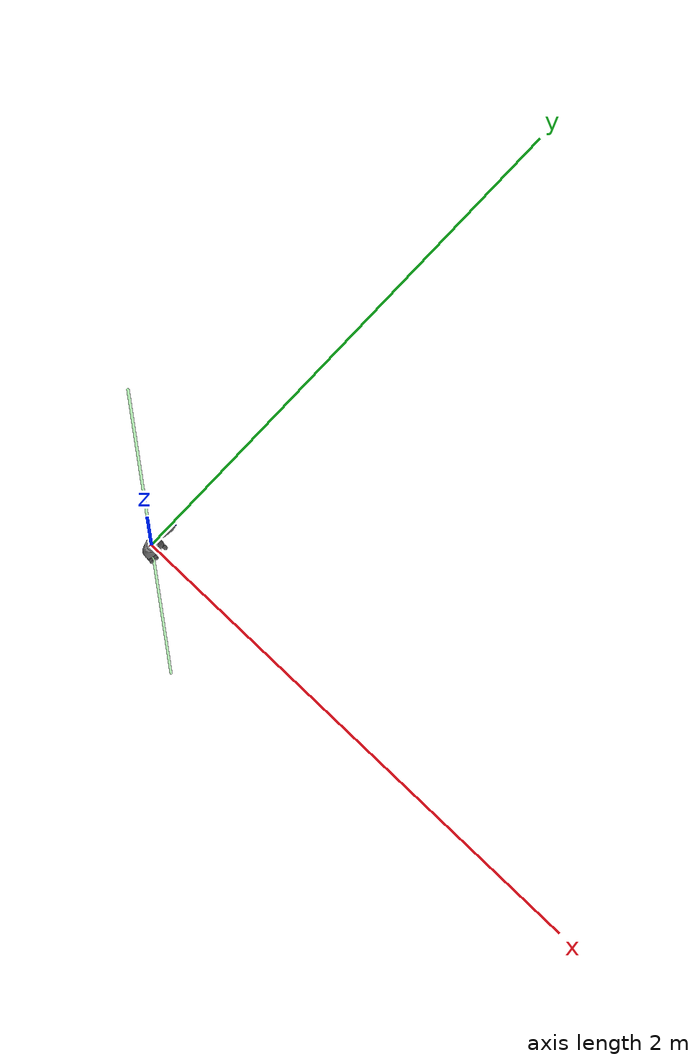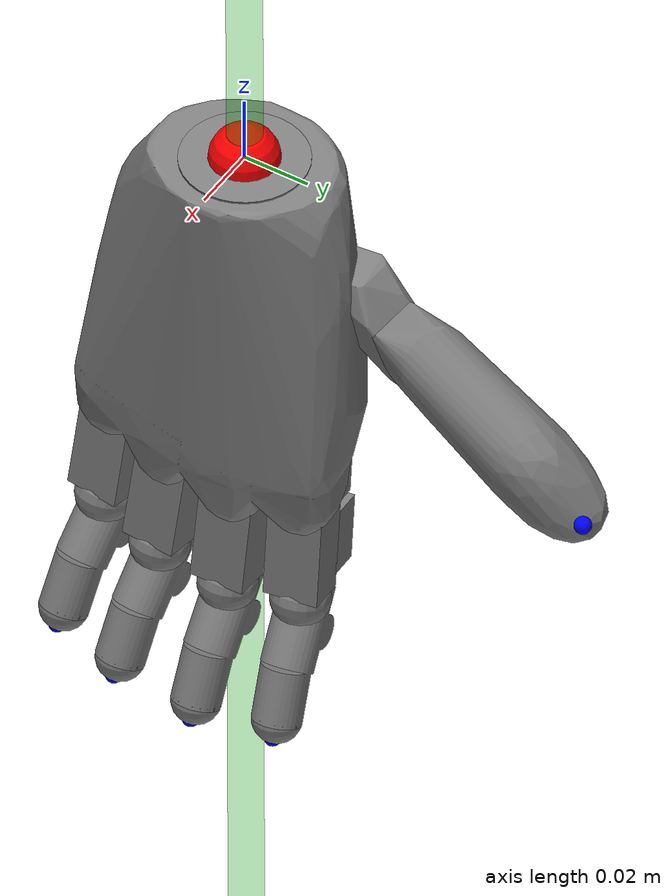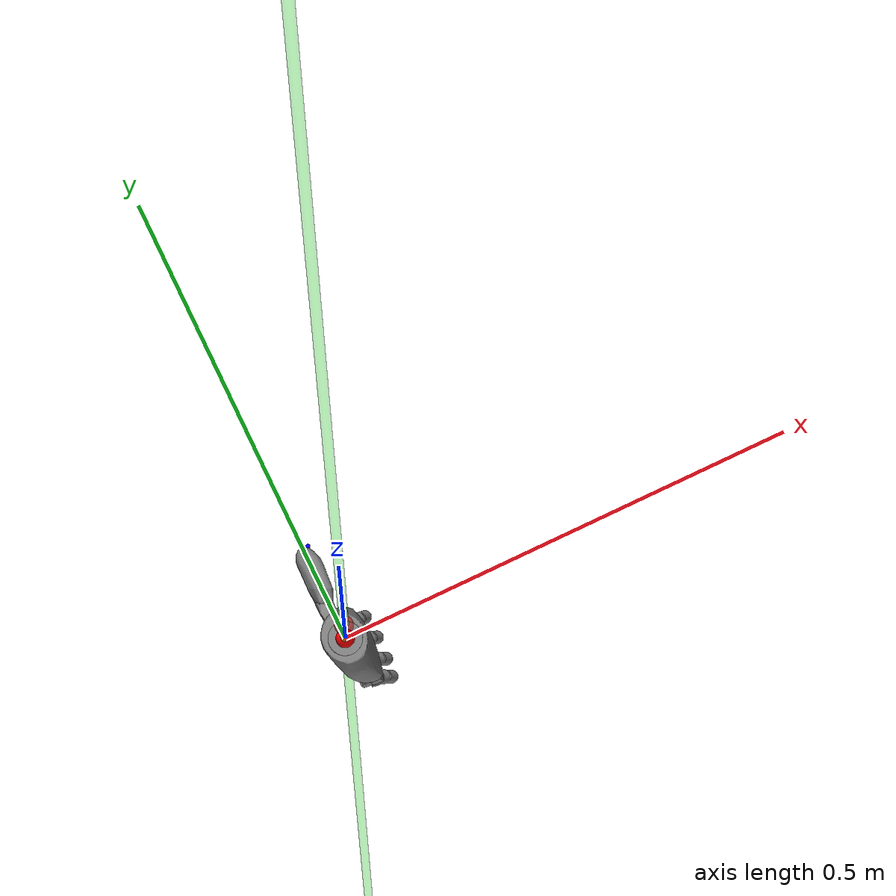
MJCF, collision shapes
<?xml version="1.0" ?>
<mujoco model="hand">
  <compiler angle="radian" autolimits="true"/>
  <visual>
    <global ellipsoidinertia="true"/>
  </visual>
  <default>
    <default class="ability_right_hand_finger">
      <joint damping="0.001" frictionloss="0.001"/>
    </default>
  </default>
  <asset>
    <mesh name="visual_wristmesh" file="meshes/ability_hand/visual/wristmesh.obj"/>
    <mesh name="collision_wristmesh_C" file="meshes/ability_hand/collision/wristmesh_C.obj"/>
    <mesh name="visual_FB_palm_ref_MIR" file="meshes/ability_hand/visual/FB_palm_ref_MIR.obj"/>
    <mesh name="collision_FB_palm_ref_MIR" file="meshes/ability_hand/collision/FB_palm_ref_MIR.obj"/>
    <mesh name="visual_thumb-F1-MIR" file="meshes/ability_hand/visual/thumb-F1-MIR.obj"/>
    <mesh name="collision_thumb-F1-MIR_C" file="meshes/ability_hand/collision/thumb-F1-MIR_C.obj"/>
    <mesh name="visual_thumb-F2" file="meshes/ability_hand/visual/thumb-F2.obj"/>
    <mesh name="collision_thumb-F2_C" file="meshes/ability_hand/collision/thumb-F2_C.obj"/>
    <mesh name="visual_idx-F1" file="meshes/ability_hand/visual/idx-F1.obj"/>
    <mesh name="visual_idx-F2" file="meshes/ability_hand/visual/idx-F2.obj"/>
    <mesh name="collision_idx-F2_C" file="meshes/ability_hand/collision/idx-F2_C.obj"/>
  </asset>
  <actuator>
    <motor name="thumb_q1" joint="thumb_q1" ctrlrange="-50 50" ctrllimited="true"/>
    <motor name="thumb_q2" joint="thumb_q2" ctrlrange="-50 50" ctrllimited="true"/>
    <motor name="index_q1" joint="index_q1" ctrlrange="-50 50" ctrllimited="true"/>
    <motor name="index_q2" joint="index_q2" ctrlrange="-50 50" ctrllimited="true"/>
    <motor name="middle_q1" joint="middle_q1" ctrlrange="-50 50" ctrllimited="true"/>
    <motor name="middle_q2" joint="middle_q2" ctrlrange="-50 50" ctrllimited="true"/>
    <motor name="ring_q1" joint="ring_q1" ctrlrange="-50 50" ctrllimited="true"/>
    <motor name="ring_q2" joint="ring_q2" ctrlrange="-50 50" ctrllimited="true"/>
    <motor name="pinky_q1" joint="pinky_q1" ctrlrange="-50 50" ctrllimited="true"/>
    <motor name="pinky_q2" joint="pinky_q2" ctrlrange="-50 50" ctrllimited="true"/>
  </actuator>
  <worldbody>
    <body name="right_hand" pos="0 0 0" quat="1 0 0 0">
      <site name="ft_frame" pos="0 0 0" size="0.01 0.01 0.01" rgba="1 0 0 1" type="sphere" group="1"/>
      <inertial pos="0 0 0.17" quat="0.707107 0.707107 0 0" mass="0.3" diaginertia="0.09 0.07 0.05"/>
      <body name="eef" pos="0 0 0.097" quat="1 0 0 0">
        <site name="grip_site" pos="0 0 0" size="0.01 0.01 0.01" rgba="1 0 0 0.5" type="sphere" group="1"/>
        <site name="ee_x" pos="0.1 0 0" size="0.005 .1" quat="0.707105  0 0.707108 0 " rgba="1 0 0 0" type="cylinder" group="1"/>
        <site name="ee_y" pos="0 0.1 0" size="0.005 .1" quat="0.707105 0.707108 0 0" rgba="0 1 0 0" type="cylinder" group="1"/>
        <site name="ee_z" pos="0 0 0.1" size="0.005 .1" quat="1 0 0 0" rgba="0 0 1 0" type="cylinder" group="1"/>
        <site name="grip_site_cylinder" pos="0 0 0" size="0.005 10" rgba="0 1 0 0.3" type="cylinder" group="1"/>
      </body>
      <!--Start of base-->
      <body name="hand_mount" quat="0 0 -1 0">
        <!--Start of hand base-->
        <body name="base" pos="0.0 0.0 0.0" quat="0.7071090180427968 0.0 0.0 -0.7071045443232222">
          <inertial pos="22.41911e-3 -0.15798201e-3 -0.01319866e-3" quat="1.0 0.0 0.0 0.0" mass="0.200" diaginertia="978.26e-6 1244.78e-6 456.22e-6"/>
          <geom pos="0.0 0.0 0.0" quat="1.0 0.0 0.0 0.0" name="base_visual" group="1" contype="0" conaffinity="0" mesh="visual_wristmesh" type="mesh"/>
          <geom pos="0.0 0.0 0.0" quat="1.0 0.0 0.0 0.0" name="base_collision" group="0" mesh="collision_wristmesh_C" type="mesh"/>
          <!--Start of hand base-->
          <body name="thumb_base" pos="-0.0240476665 0.00378124745 0.03232964923" quat="0.04422965633392243 0.0006102695033793134 -0.9990212031492024 -2.701918460132315e-05">
            <inertial pos="22.41911e-3 -0.15798201e-3 -0.01319866e-3" quat="1.0 0.0 0.0 0.0" mass="0.200" diaginertia="978.26e-6 1244.78e-6 456.22e-6"/>
            <geom pos="0.0 0.0 0.0" quat="1.0 0.0 0.0 0.0" name="thumb_base_visual" group="1" contype="0" conaffinity="0" mesh="visual_FB_palm_ref_MIR" type="mesh"/>
            <geom pos="0.0 0.0 0.0" quat="1.0 0.0 0.0 0.0" name="thumb_base_collision" group="0" mesh="collision_FB_palm_ref_MIR" type="mesh"/>
            <!--Start of thumb_L1-->
            <body name="thumb_L1" pos="0.0 0.0 0.0" quat="6.095958279994181e-17 0.9955455375767813 -0.09428193151902146 -5.773103282609979e-18">
              <joint name="thumb_q1" type="hinge" class="ability_right_hand_finger" axis="0 0 1" range="-2.0943951 0"/>
              <inertial pos="14.606e-3 -1.890854e-3 -3.1155356e-3" quat="1.0 0.0 0.0 0.0" mass="0.00268342" diaginertia="0.16931e-4 0.77769934e-4 0.7249122e-4"/>
              <geom pos="0.0278283501 1.7436510745838653e-19 0.0147507" quat="0.608761429008721 0.7933533402912348 2.128773524066493e-18 1.6334653763113006e-18" name="thumb_L1_visual" group="1" contype="0" conaffinity="0" mesh="visual_thumb-F1-MIR" type="mesh"/>
              <geom pos="0.0278283501 1.7436510745838653e-19 0.0147507" quat="0.608761429008721 0.7933533402912348 2.128773524066493e-18 1.6334653763113006e-18" name="thumb_L1_collision" group="0" mesh="collision_thumb-F1-MIR_C" type="mesh"/>
              <!--Start of thumb_L2-->
              <body name="thumb_L2" pos="0.0278283501 1.7436510745838653e-19 0.0147507" quat="0.608761429008721 0.7933533402912348 2.128773524066493e-18 1.6334653763113006e-18">
                <joint name="thumb_q2" type="hinge" class="ability_right_hand_finger" axis="0 0 1" range="0 2.0943951"/>
                <inertial pos="30.020522e-3 5.59476e-3 -4.1504356e-3" quat="1.0 0.0 0.0 0.0" mass="0.0055" diaginertia="4.4789082e-4 15.600996e-4 17.908554e-4"/>
                <geom pos="0.06518669 0.02334021 0.00393483" quat="3.2197760503667046e-07 -0.9852589757290691 -0.1710694325272601 5.5904617503586985e-08" name="thumb_L2_visual" group="1" contype="0" conaffinity="0" mesh="visual_thumb-F2" type="mesh"/>
                <geom pos="0.06518669 0.02334021 0.00393483" quat="3.2197760503667046e-07 -0.9852589757290691 -0.1710694325272601 5.5904617503586985e-08" name="thumb_L2_collision" group="0" mesh="collision_thumb-F2_C" type="mesh"/>
                <body name="thumb_tip">
                  <site name="thumb_tip" pos="0.065 0.016 0" rgba="0 0 1 1" size="0.0025" group="2"/>
                </body>
              </body>
              <!--End of thumb_L2-->
            </body>
            <!--End of thumb_L1-->
            <!--Start of index_L1-->
            <body name="index_L1" pos="0.00949 -0.01304 -0.06295" quat="0.7441290289055105 -0.12811340794472753 0.6535561089151588 -0.052185779141515676">
              <joint name="index_q1" type="hinge" class="ability_right_hand_finger" axis="0 0 1" range="0 2.0943951"/>
              <inertial pos="22.41911e-3 -0.15798201e-3 -0.01319866e-3" quat="1.0 0.0 0.0 0.0" mass="0.00635888" diaginertia="0.29766e-4 3.6947967e-4 3.8176336e-4"/>
              <geom pos="0.038472723 0.003257695 0.0" quat="0.9991081505129547 0.0 0.0 0.04222444290435509" name="index_L1_visual" group="1" contype="0" conaffinity="0" mesh="visual_idx-F1" type="mesh"/>
              <geom pos="0.036 -0.00175 0.0" quat="1.0 0.0 0.0 0.0" name="index_L1_collision" group="0" type="sphere" size="0.0085"/>
              <geom pos="0.019 -0.0045 0.0" quat="0.9991076015107723 0.0 0.0 0.042237431306743435" name="index_L1_collision_1" group="0" type="box" size="0.014 0.006 0.008"/>
              <geom pos="0.018 0.006 0.0" quat="0.9991076015107723 0.0 0.0 0.042237431306743435" name="index_L1_collision_2" group="0" type="box" size="0.01 0.005 0.008"/>
              <geom pos="-0.001 0.0 0.007" quat="0.9991076015107723 0.0 0.0 0.042237431306743435" name="index_L1_collision_3" group="0" type="box" size="0.006 0.006 0.001"/>
              <geom pos="-0.001 0.0 -0.007" quat="0.9991076015107723 0.0 0.0 0.042237431306743435" name="index_L1_collision_4" group="0" type="box" size="0.006 0.006 0.001"/>
              <!--Start of index_L2-->
              <body name="index_L2" pos="0.038472723 0.003257695 0.0" quat="0.9991081505129547 0.0 0.0 0.04222444290435509">
                <joint name="index_q2" type="hinge" class="ability_right_hand_finger" axis="0 0 1" range="0.0 2.6586"/>
                <inertial pos="13.36818e-3 -8.75392e-3 -0.02886e-3" quat="1.0 0.0 0.0 0.0" mass="0.00645" diaginertia="0.82671e-4 1.98028e-4 2.64638e-4"/>
                <geom pos="0.0091241 0.0 0.0" quat="1.0 0.0 0.0 0.0" name="index_L2_visual" group="1" contype="0" conaffinity="0" mesh="visual_idx-F2" type="mesh"/>
                <geom pos="0.0 0.0 0.0" quat="1.0 0.0 0.0 0.0" name="index_L2_collision" group="0" mesh="collision_idx-F2_C" type="mesh"/>
                <geom pos="0.03 -0.016 0.0" quat="1.0 0.0 0.0 0.0" name="index_L2_collision_1" group="0" type="sphere" size="0.007"/>
                <body name="index_tip">
                  <site name="index_tip" pos="0.035  -0.018 0" rgba="0 0 1 1" size="0.0025" group="2"/>
                </body>
              </body>
              <!--End of index_L2-->
            </body>
            <!--End of index_L1-->
            <!--Start of middle_L1-->
            <body name="middle_L1" pos="-0.009653191 -0.015310271 -0.067853949" quat="0.7289207710104808 -0.1006523848250529 0.6729210218450563 -0.07563666688532023">
              <joint name="middle_q1" type="hinge" class="ability_right_hand_finger" axis="0 0 1" range="0 2.0943951"/>
              <inertial pos="22.41911e-3 -0.15798201e-3 -0.01319866e-3" quat="1.0 0.0 0.0 0.0" mass="0.00635888" diaginertia="0.29766e-4 3.6947967e-4 3.8176336e-4"/>
              <geom pos="0.038472723 0.003257695 0.0" quat="0.9991081505129547 0.0 0.0 0.04222444290435509" name="middle_L1_visual" group="1" contype="0" conaffinity="0" mesh="visual_idx-F1" type="mesh"/>
              <geom pos="0.036 -0.00175 0.0" quat="1.0 0.0 0.0 0.0" name="middle_L1_collision" group="0" type="sphere" size="0.0085"/>
              <geom pos="0.019 -0.0045 0.0" quat="0.9991076015107723 0.0 0.0 0.042237431306743435" name="middle_L1_collision_1" group="0" type="box" size="0.014 0.006 0.008"/>
              <geom pos="0.018 0.006 0.0" quat="0.9991076015107723 0.0 0.0 0.042237431306743435" name="middle_L1_collision_2" group="0" type="box" size="0.01 0.005 0.008"/>
              <geom pos="-0.001 0.0 0.007" quat="0.9991076015107723 0.0 0.0 0.042237431306743435" name="middle_L1_collision_3" group="0" type="box" size="0.006 0.006 0.001"/>
              <geom pos="-0.001 0.0 -0.007" quat="0.9991076015107723 0.0 0.0 0.042237431306743435" name="middle_L1_collision_4" group="0" type="box" size="0.006 0.006 0.001"/>
              <!--Start of middle_L2-->
              <body name="middle_L2" pos="0.038472723 0.003257695 0.0" quat="0.9991081505129547 0.0 0.0 0.04222444290435509">
                <joint name="middle_q2" type="hinge" class="ability_right_hand_finger" axis="0 0 1" range="0.0 2.6586"/>
                <inertial pos="13.36818e-3 -8.75392e-3 -0.02886e-3" quat="1.0 0.0 0.0 0.0" mass="0.00645" diaginertia="0.82671e-4 1.98028e-4 2.64638e-4"/>
                <geom pos="0.0091241 0.0 0.0" quat="1.0 0.0 0.0 0.0" name="middle_L2_visual" group="1" contype="0" conaffinity="0" mesh="visual_idx-F2" type="mesh"/>
                <geom pos="0.0 0.0 0.0" quat="1.0 0.0 0.0 0.0" name="middle_L2_collision" group="0" mesh="collision_idx-F2_C" type="mesh"/>
                <geom pos="0.03 -0.016 0.0" quat="1.0 0.0 0.0 0.0" name="middle_L2_collision_1" group="0" type="sphere" size="0.007"/>
                <body name="middle_tip">
                  <site name="middle_tip" pos="0.035  -0.018 0" rgba="0 0 1 1" size="0.0025" group="2"/>
                </body>
              </body>
              <!--End of middle_L2-->
            </body>
            <!--End of middle_L1-->
            <!--Start of ring_L1-->
            <body name="ring_L1" pos="-0.02995426 -0.014212492 -0.067286105" quat="0.7124733082016415 -0.07294795061211778 0.6904727568071236 -0.10152710824637612">
              <joint name="ring_q1" type="hinge" class="ability_right_hand_finger" axis="0 0 1" range="0 2.0943951"/>
              <inertial pos="22.41911e-3 -0.15798201e-3 -0.01319866e-3" quat="1.0 0.0 0.0 0.0" mass="0.00635888" diaginertia="0.29766e-4 3.6947967e-4 3.8176336e-4"/>
              <geom pos="0.038472723 0.003257695 0.0" quat="0.9991081505129547 0.0 0.0 0.04222444290435509" name="ring_L1_visual" group="1" contype="0" conaffinity="0" mesh="visual_idx-F1" type="mesh"/>
              <geom pos="0.036 -0.00175 0.0" quat="1.0 0.0 0.0 0.0" name="ring_L1_collision" group="0" type="sphere" size="0.0085"/>
              <geom pos="0.019 -0.0045 0.0" quat="0.9991076015107723 0.0 0.0 0.042237431306743435" name="ring_L1_collision_1" group="0" type="box" size="0.014 0.006 0.008"/>
              <geom pos="0.018 0.006 0.0" quat="0.9991076015107723 0.0 0.0 0.042237431306743435" name="ring_L1_collision_2" group="0" type="box" size="0.01 0.005 0.008"/>
              <geom pos="-0.001 0.0 0.007" quat="0.9991076015107723 0.0 0.0 0.042237431306743435" name="ring_L1_collision_3" group="0" type="box" size="0.006 0.006 0.001"/>
              <geom pos="-0.001 0.0 -0.007" quat="0.9991076015107723 0.0 0.0 0.042237431306743435" name="ring_L1_collision_4" group="0" type="box" size="0.006 0.006 0.001"/>
              <!--Start of ring_L2-->
              <body name="ring_L2" pos="0.038472723 0.003257695 0.0" quat="0.9991081505129547 0.0 0.0 0.04222444290435509">
                <joint name="ring_q2" type="hinge" class="ability_right_hand_finger" axis="0 0 1" range="0.0 2.6586"/>
                <inertial pos="13.36818e-3 -8.75392e-3 -0.02886e-3" quat="1.0 0.0 0.0 0.0" mass="0.00645" diaginertia="0.82671e-4 1.98028e-4 2.64638e-4"/>
                <geom pos="0.0091241 0.0 0.0" quat="1.0 0.0 0.0 0.0" name="ring_L2_visual" group="1" contype="0" conaffinity="0" mesh="visual_idx-F2" type="mesh"/>
                <geom pos="0.0 0.0 0.0" quat="1.0 0.0 0.0 0.0" name="ring_L2_collision" group="0" mesh="collision_idx-F2_C" type="mesh"/>
                <geom pos="0.03 -0.016 0.0" quat="1.0 0.0 0.0 0.0" name="ring_L2_collision_1" group="0" type="sphere" size="0.007"/>
                <body name="ring_tip">
                  <site name="ring_tip" pos="0.035  -0.018 0" rgba="0 0 1 1" size="0.0025" group="2"/>
                </body>
              </body>
              <!--End of ring_L2-->
            </body>
            <!--End of ring_L1-->
            <!--Start of pinky_L1-->
            <body name="pinky_L1" pos="-0.049521293 -0.011004583 -0.063029065" quat="0.7129681457596535 -0.0493647398401903 0.6883388097479964 -0.12421444596850761">
              <joint name="pinky_q1" type="hinge" class="ability_right_hand_finger" axis="0 0 1" range="0 2.0943951"/>
              <inertial pos="22.41911e-3 -0.15798201e-3 -0.01319866e-3" quat="1.0 0.0 0.0 0.0" mass="0.00635888" diaginertia="0.29766e-4 3.6947967e-4 3.8176336e-4"/>
              <geom pos="0.038472723 0.003257695 0.0" quat="0.9991081505129547 0.0 0.0 0.04222444290435509" name="pinky_L1_visual" group="1" contype="0" conaffinity="0" mesh="visual_idx-F1" type="mesh"/>
              <geom pos="0.036 -0.00175 0.0" quat="1.0 0.0 0.0 0.0" name="pinky_L1_collision" group="0" type="sphere" size="0.0085"/>
              <geom pos="0.019 -0.0045 0.0" quat="0.9991076015107723 0.0 0.0 0.042237431306743435" name="pinky_L1_collision_1" group="0" type="box" size="0.014 0.006 0.008"/>
              <geom pos="0.018 0.006 0.0" quat="0.9991076015107723 0.0 0.0 0.042237431306743435" name="pinky_L1_collision_2" group="0" type="box" size="0.01 0.005 0.008"/>
              <geom pos="-0.001 0.0 0.007" quat="0.9991076015107723 0.0 0.0 0.042237431306743435" name="pinky_L1_collision_3" group="0" type="box" size="0.006 0.006 0.001"/>
              <geom pos="-0.001 0.0 -0.007" quat="0.9991076015107723 0.0 0.0 0.042237431306743435" name="pinky_L1_collision_4" group="0" type="box" size="0.006 0.006 0.001"/>
              <!--Start of pinky_L2-->
              <body name="pinky_L2" pos="0.038472723 0.003257695 0.0" quat="0.9991081505129547 0.0 0.0 0.04222444290435509">
                <joint name="pinky_q2" type="hinge" class="ability_right_hand_finger" axis="0 0 1" range="0.0 2.6586"/>
                <inertial pos="13.36818e-3 -8.75392e-3 -0.02886e-3" quat="1.0 0.0 0.0 0.0" mass="0.00645" diaginertia="0.82671e-4 1.98028e-4 2.64638e-4"/>
                <geom pos="0.0091241 0.0 0.0" quat="1.0 0.0 0.0 0.0" name="pinky_L2_visual" group="1" contype="0" conaffinity="0" mesh="visual_idx-F2" type="mesh"/>
                <geom pos="0.0 0.0 0.0" quat="1.0 0.0 0.0 0.0" name="pinky_L2_collision" group="0" mesh="collision_idx-F2_C" type="mesh"/>
                <geom pos="0.03 -0.016 0.0" quat="1.0 0.0 0.0 0.0" name="pinky_L2_collision_1" group="0" type="sphere" size="0.007"/>
                <body name="pinky_tip">
                  <site name="pinky_tip" pos="0.035  -0.018 0" rgba="0 0 1 1" size="0.0025" group="2"/>
                </body>
              </body>
              <!--End of pinky_L2-->
            </body>
            <!--End of pinky_L1-->
          </body>
          <!--End of hand base-->
        </body>
        <!--End of hand base-->
      </body>
      <!--End of base-->
    </body>
  </worldbody>
  <contact>
    <exclude body1="thumb_base" body2="thumb_L1"/>
    <exclude body1="thumb_base" body2="index_L1"/>
    <exclude body1="thumb_base" body2="middle_L1"/>
    <exclude body1="thumb_base" body2="ring_L1"/>
    <exclude body1="thumb_base" body2="pinky_L1"/>
    <exclude body1="middle_L1" body2="index_L1"/>
    <exclude body1="ring_L1" body2="middle_L1"/>
    <exclude body1="pinky_L1" body2="ring_L1"/>
  </contact>
  <sensor>
    <force name="force_ee" site="ft_frame"/>
    <torque name="torque_ee" site="ft_frame"/>
  </sensor>
</mujoco>
